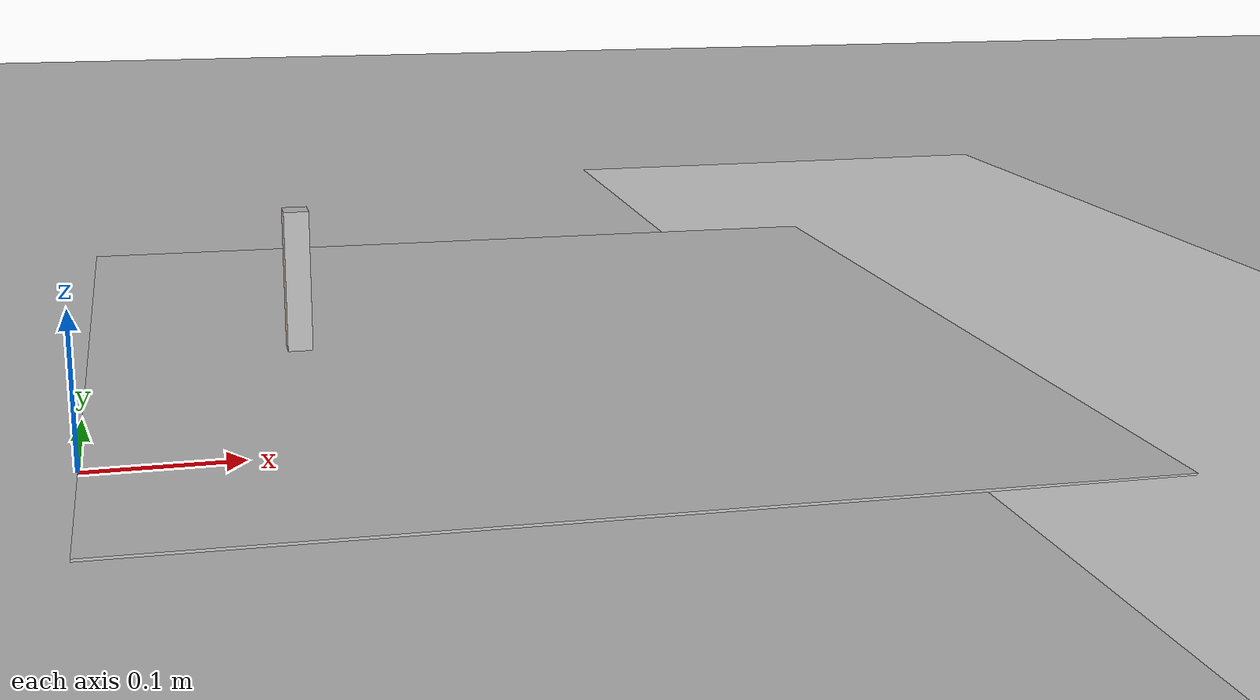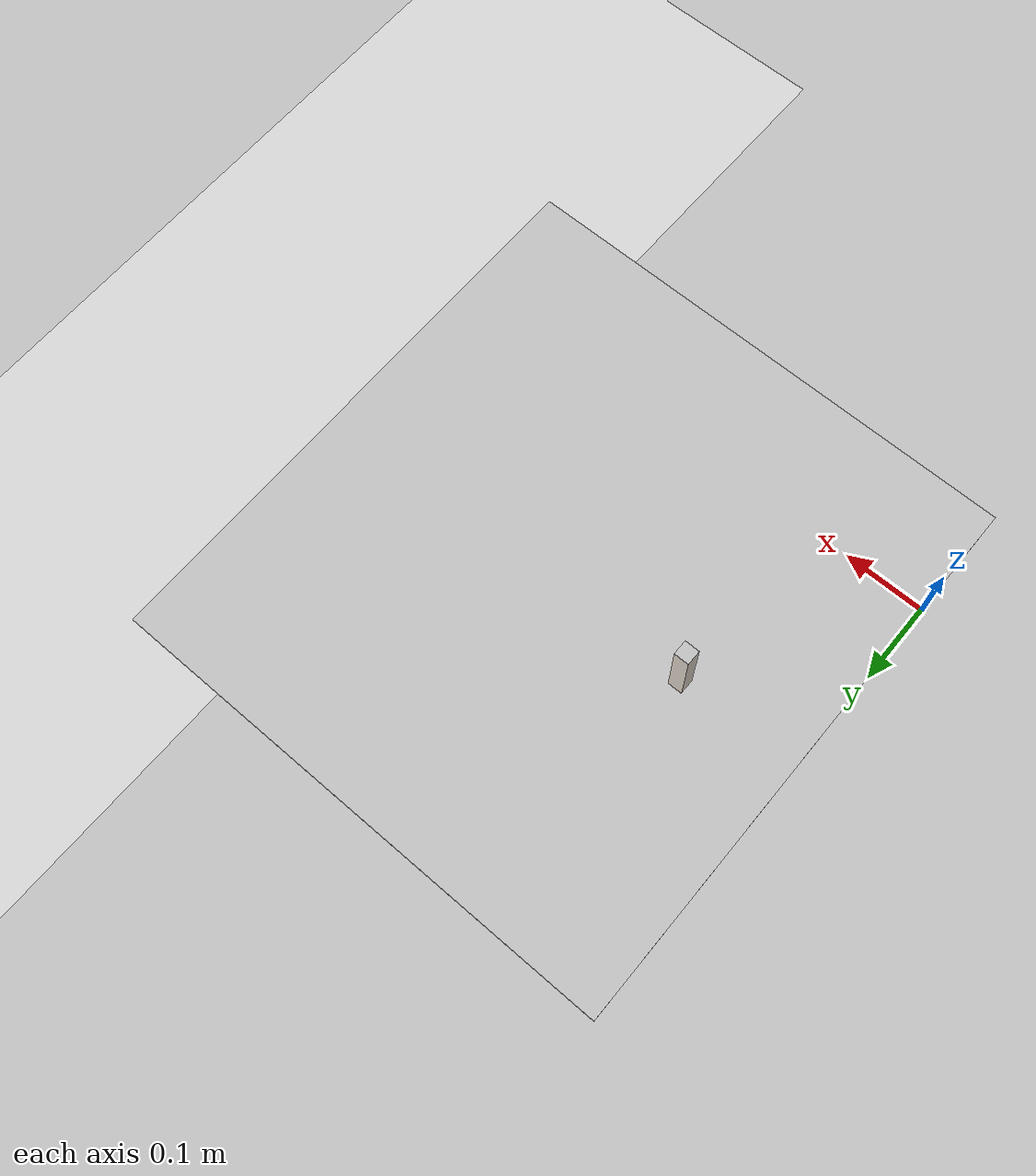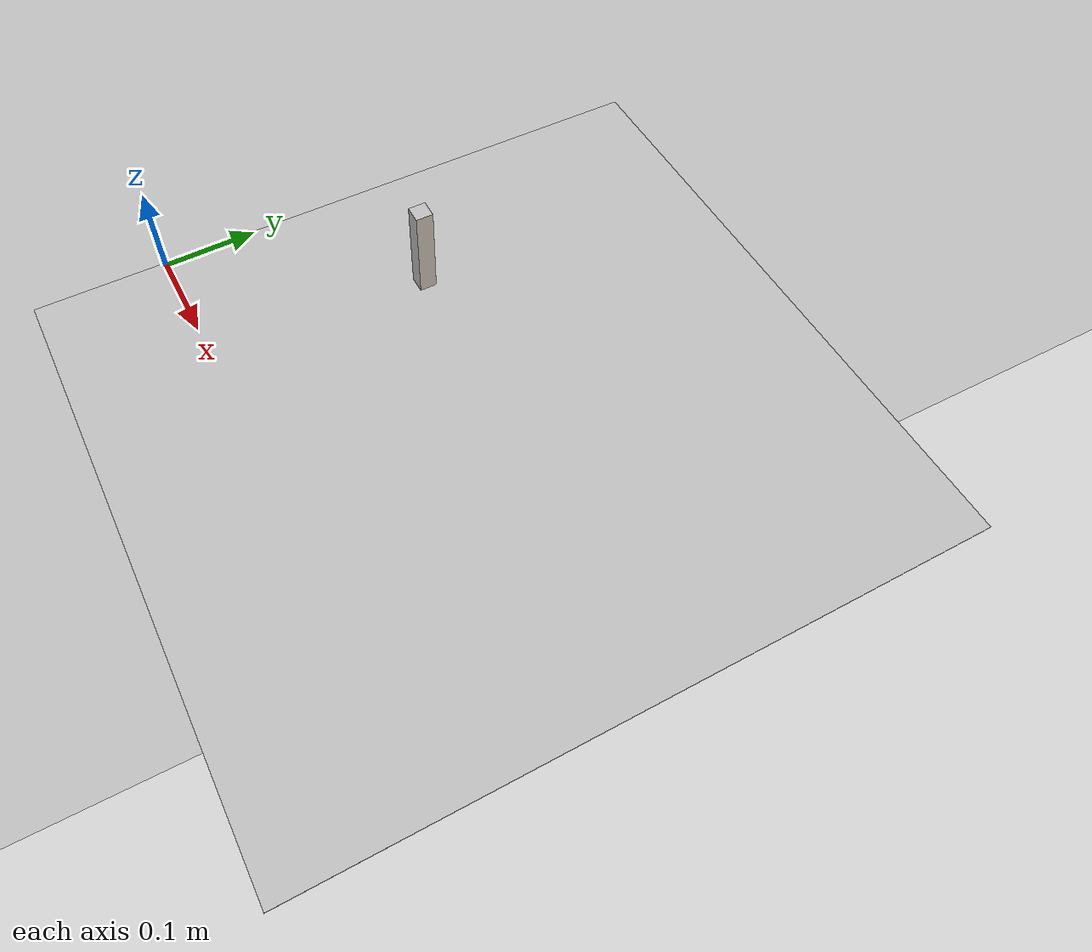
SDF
<sdf version="1.6">
 <world name="default">
  <light name="sun" type="directional">
   <pose>0 0 10 0 -0 0</pose>
   <diffuse>0.8 0.8 0.8 1</diffuse>
   <specular>0.2 0.2 0.2 1</specular>
   <attenuation>
    <range>1000</range>
    <constant>0.9</constant>
    <linear>0.01</linear>
    <quadratic>0.001</quadratic>
   </attenuation>
   <direction>-0.5 0.1 -0.9</direction>
  </light>
  <model name="ground_plane">
   <static>1</static>
   <link name="link">
    <collision name="collision">
     <geometry><plane><normal>0 0 1</normal><size>100 100</size></plane></geometry>
     <surface><friction><ode><mu>100</mu><mu2>50</mu2></ode></friction></surface>
    </collision>
    <visual name="visual">
     <cast_shadows>0</cast_shadows>
     <geometry><plane><normal>0 0 1</normal><size>100 100</size></plane></geometry>
     <material>
      <script><uri>file://media/materials/scripts/gazebo.material</uri><name>Gazebo/Grey</name></script>
     </material>
    </visual>
   </link>
  </model>
  <gravity>0 0 -9.8</gravity>
  <magnetic_field>6e-06 2.3e-05 -4.2e-05</magnetic_field>
  <atmosphere type="adiabatic"/>
  <physics name="default_physics" default="0" type="ode">
   <max_step_size>0.001</max_step_size>
   <real_time_factor>1</real_time_factor>
   <real_time_update_rate>1000</real_time_update_rate>
  </physics>
  <scene><ambient>0.4 0.4 0.4 1</ambient><background>0.7 0.7 0.7 1</background><shadows>1</shadows></scene>
  <spherical_coordinates>
   <surface_model>EARTH_WGS84</surface_model>
   <latitude_deg>0</latitude_deg>
   <longitude_deg>0</longitude_deg>
   <elevation>0</elevation>
   <heading_deg>0</heading_deg>
  </spherical_coordinates>
  <model name="flat_chessboard">
   <static>0</static>
   <link name="link">
    <inertial>
     <mass>0.05</mass>
     <inertia><ixx>1.5e-05</ixx><ixy>0</ixy><ixz>0</ixz><iyy>1.5e-05</iyy><iyz>0</iyz><izz>1.08e-05</izz></inertia>
    </inertial>
    <collision name="collision">
     <geometry><box><size>0.7 0.65 0.0039</size></box></geometry>
     <surface>
      <friction><ode><mu>30</mu><mu2>30</mu2><fdir1>0 0 0</fdir1></ode></friction>
      <contact><ode><kp>1e+06</kp><kd>100</kd><min_depth>0.0025</min_depth><max_vel>1</max_vel></ode></contact>
     </surface>
    </collision>
    <visual name="chessboard support"><geometry><box><size>0.7 0.65 0.0039</size></box></geometry></visual>
    <visual name="printed chessboard">
     <pose>0 0 0 0 -0 1.5708</pose>
     <geometry>
      <mesh><uri>model://flat_chessboard/meshes/flat_chessboard.dae</uri><scale>11.88 8.4 0.08</scale></mesh>
     </geometry>
    </visual>
    <velocity_decay><linear>0</linear><angular>0</angular></velocity_decay>
    <kinematic>1</kinematic>
   </link>
   <pose>0.32558 0.207819 -0.000478 -0.003572 2.3e-05 -1.57462</pose>
  </model>
  <model name="queenW">
   <static>0</static>
   <link name="link">
    <inertial>
     <mass>0.05</mass>
     <inertia><ixx>1.5e-05</ixx><ixy>0</ixy><ixz>0</ixz><iyy>1.5e-05</iyy><iyz>0</iyz><izz>1.08e-05</izz></inertia>
    </inertial>
    <collision name="colision">
     <geometry><box><size>0.03 0.03 0.08</size></box></geometry>
     <surface>
      <friction><ode><mu>30</mu><mu2>30</mu2><fdir1>0 0 0</fdir1></ode></friction>
      <contact><ode><kp>1000</kp><kd>100</kd><min_depth>0.001</min_depth><max_vel>0.001</max_vel></ode></contact>
     </surface>
    </collision>
    <visual name="visual1">
     <geometry><mesh><uri>model://queenW/meshes/queenW.dae</uri><scale>0.6 0.6 1.6</scale></mesh></geometry>
    </visual>
    <velocity_decay><linear>0</linear><angular>0</angular></velocity_decay>
   </link>
   <pose>0.151764 0.232702 0.040971 3.5e-05 0.003651 -0.000674</pose>
  </model>
 </world>
</sdf>
